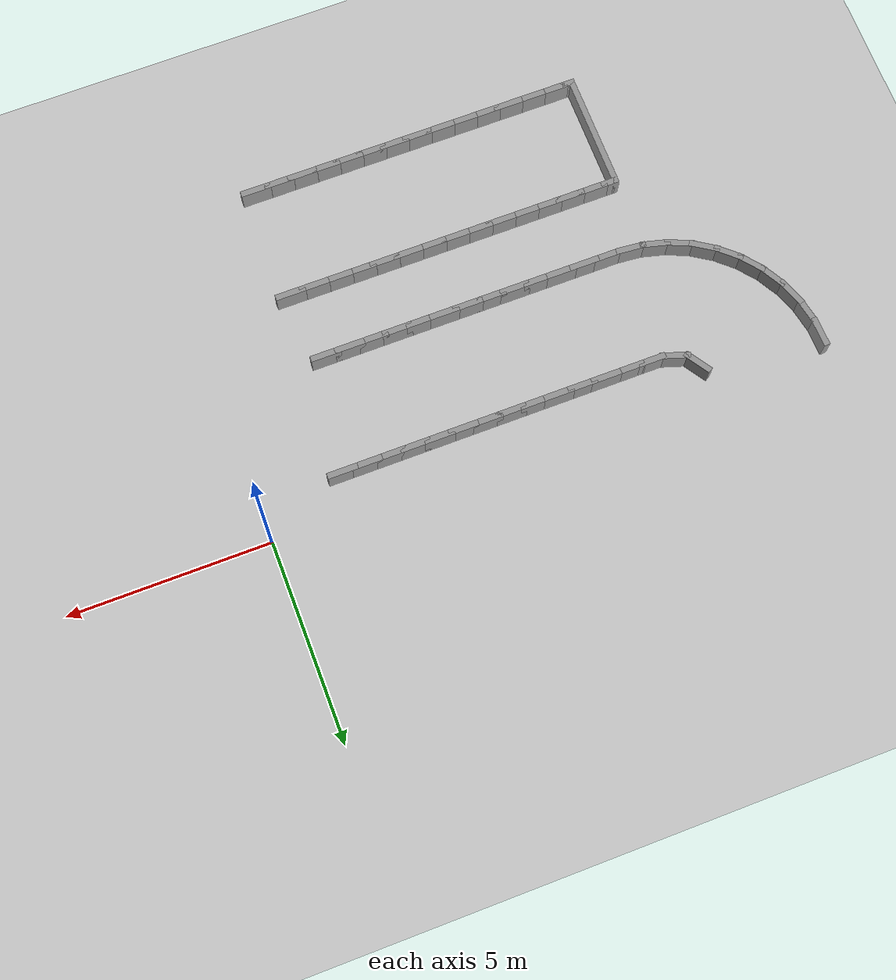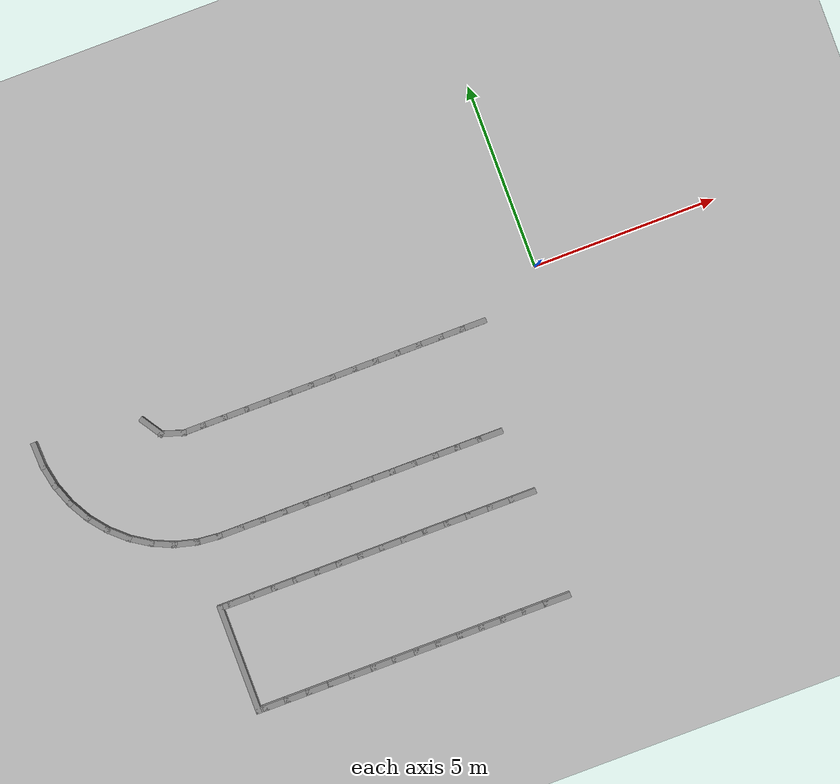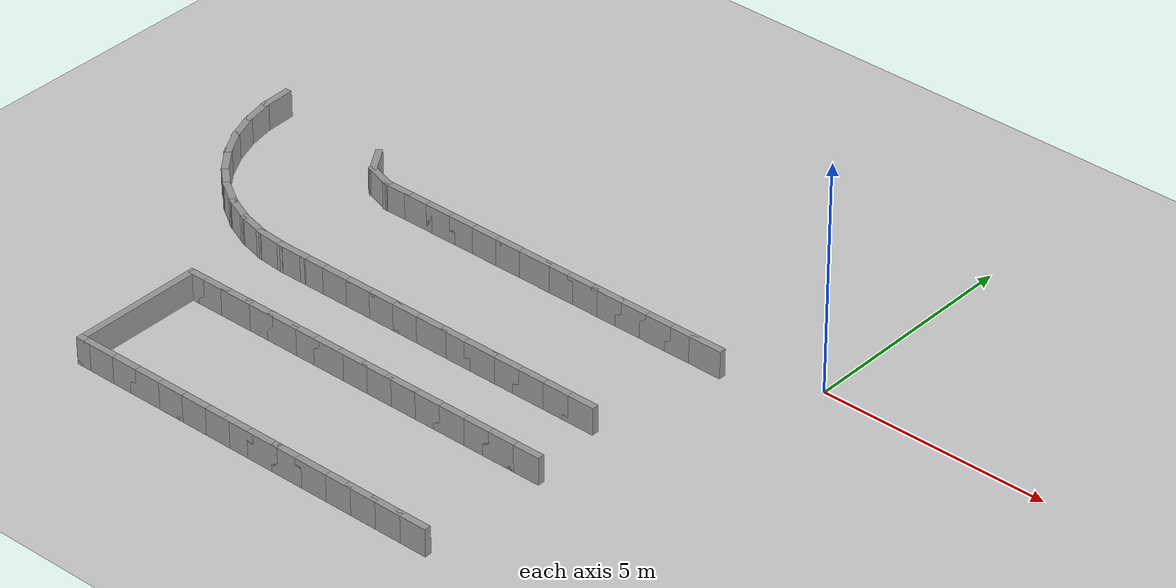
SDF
<sdf version="1.7">
 <world name="default">
  <model name="ground_plane">
   <static>1</static>
   <link name="link">
    <collision name="collision">
     <geometry><plane><normal>0 0 1</normal><size>100 100</size></plane></geometry>
     <surface><friction><ode><mu>100</mu><mu2>50</mu2></ode></friction></surface>
    </collision>
    <visual name="visual">
     <cast_shadows>0</cast_shadows>
     <geometry><plane><normal>0 0 1</normal><size>100 100</size></plane></geometry>
     <material>
      <script><uri>file://media/materials/scripts/gazebo.material</uri><name>Gazebo/Grey</name></script>
     </material>
    </visual>
   </link>
  </model>
  <model name="rand_serp_00">
   <link name="Wall_91">
    <collision name="Wall_91_Collision">
     <geometry><box><size>0.7384 0.1500 0.6000</size></box></geometry>
     <pose>0 0 0.3000 0 -0 0</pose>
    </collision>
    <visual name="Wall_91_Visual">
     <pose>0 0 0.3000 0 -0 0</pose>
     <geometry><box><size>0.7384 0.1500 0.6000</size></box></geometry>
     <material>
      <script><uri>file://media/materials/scripts/gazebo.material</uri><name>Gazebo/Grey</name></script>
      <ambient>1 1 1 1</ambient>
     </material>
    </visual>
    <pose>-10.8392 -0.4553 0 0 -0 -0.99139</pose>
   </link>
   <link name="Wall_92">
    <collision name="Wall_92_Collision">
     <geometry><box><size>0.7387 0.1500 0.6000</size></box></geometry>
     <pose>0 0 0.3000 0 -0 0</pose>
    </collision>
    <visual name="Wall_92_Visual">
     <pose>0 0 0.3000 0 -0 0</pose>
     <geometry><box><size>0.7387 0.1500 0.6000</size></box></geometry>
     <material>
      <script><uri>file://media/materials/scripts/gazebo.material</uri><name>Gazebo/Grey</name></script>
      <ambient>1 1 1 1</ambient>
     </material>
    </visual>
    <pose>-10.3981 -0.7920 0 0 -0 -0.31253</pose>
   </link>
   <link name="Wall_93">
    <collision name="Wall_93_Collision">
     <geometry><box><size>0.6933 0.1500 0.6000</size></box></geometry>
     <pose>0 0 0.3000 0 -0 0</pose>
    </collision>
    <visual name="Wall_93_Visual">
     <pose>0 0 0.3000 0 -0 0</pose>
     <geometry><box><size>0.6933 0.1500 0.6000</size></box></geometry>
     <material>
      <script><uri>file://media/materials/scripts/gazebo.material</uri><name>Gazebo/Grey</name></script>
      <ambient>1 1 1 1</ambient>
     </material>
    </visual>
    <pose>-9.8463 -0.8824 0 0 -0 0.00043</pose>
   </link>
   <link name="Wall_94">
    <collision name="Wall_94_Collision">
     <geometry><box><size>0.7500 0.1500 0.6000</size></box></geometry>
     <pose>0 0 0.3000 0 -0 0</pose>
    </collision>
    <visual name="Wall_94_Visual">
     <pose>0 0 0.3000 0 -0 0</pose>
     <geometry><box><size>0.7500 0.1500 0.6000</size></box></geometry>
     <material>
      <script><uri>file://media/materials/scripts/gazebo.material</uri><name>Gazebo/Grey</name></script>
      <ambient>1 1 1 1</ambient>
     </material>
    </visual>
    <pose>-9.2747 -0.8823 0 0 -0 0.00000</pose>
   </link>
   <link name="Wall_95">
    <collision name="Wall_95_Collision">
     <geometry><box><size>0.7500 0.1500 0.6000</size></box></geometry>
     <pose>0 0 0.3000 0 -0 0</pose>
    </collision>
    <visual name="Wall_95_Visual">
     <pose>0 0 0.3000 0 -0 0</pose>
     <geometry><box><size>0.7500 0.1500 0.6000</size></box></geometry>
     <material>
      <script><uri>file://media/materials/scripts/gazebo.material</uri><name>Gazebo/Grey</name></script>
      <ambient>1 1 1 1</ambient>
     </material>
    </visual>
    <pose>-8.6747 -0.8823 0 0 -0 0.00000</pose>
   </link>
   <link name="Wall_96">
    <collision name="Wall_96_Collision">
     <geometry><box><size>0.7500 0.1500 0.6000</size></box></geometry>
     <pose>0 0 0.3000 0 -0 0</pose>
    </collision>
    <visual name="Wall_96_Visual">
     <pose>0 0 0.3000 0 -0 0</pose>
     <geometry><box><size>0.7500 0.1500 0.6000</size></box></geometry>
     <material>
      <script><uri>file://media/materials/scripts/gazebo.material</uri><name>Gazebo/Grey</name></script>
      <ambient>1 1 1 1</ambient>
     </material>
    </visual>
    <pose>-8.0747 -0.8823 0 0 -0 0.00000</pose>
   </link>
   <link name="Wall_97">
    <collision name="Wall_97_Collision">
     <geometry><box><size>0.7500 0.1500 0.6000</size></box></geometry>
     <pose>0 0 0.3000 0 -0 0</pose>
    </collision>
    <visual name="Wall_97_Visual">
     <pose>0 0 0.3000 0 -0 0</pose>
     <geometry><box><size>0.7500 0.1500 0.6000</size></box></geometry>
     <material>
      <script><uri>file://media/materials/scripts/gazebo.material</uri><name>Gazebo/Grey</name></script>
      <ambient>1 1 1 1</ambient>
     </material>
    </visual>
    <pose>-7.4747 -0.8823 0 0 -0 0.00000</pose>
   </link>
   <link name="Wall_98">
    <collision name="Wall_98_Collision">
     <geometry><box><size>0.7500 0.1500 0.6000</size></box></geometry>
     <pose>0 0 0.3000 0 -0 0</pose>
    </collision>
    <visual name="Wall_98_Visual">
     <pose>0 0 0.3000 0 -0 0</pose>
     <geometry><box><size>0.7500 0.1500 0.6000</size></box></geometry>
     <material>
      <script><uri>file://media/materials/scripts/gazebo.material</uri><name>Gazebo/Grey</name></script>
      <ambient>1 1 1 1</ambient>
     </material>
    </visual>
    <pose>-6.8747 -0.8823 0 0 -0 0.00000</pose>
   </link>
   <link name="Wall_99">
    <collision name="Wall_99_Collision">
     <geometry><box><size>0.7500 0.1500 0.6000</size></box></geometry>
     <pose>0 0 0.3000 0 -0 0</pose>
    </collision>
    <visual name="Wall_99_Visual">
     <pose>0 0 0.3000 0 -0 0</pose>
     <geometry><box><size>0.7500 0.1500 0.6000</size></box></geometry>
     <material>
      <script><uri>file://media/materials/scripts/gazebo.material</uri><name>Gazebo/Grey</name></script>
      <ambient>1 1 1 1</ambient>
     </material>
    </visual>
    <pose>-6.2747 -0.8823 0 0 -0 0.00000</pose>
   </link>
   <link name="Wall_100">
    <collision name="Wall_100_Collision">
     <geometry><box><size>0.7500 0.1500 0.6000</size></box></geometry>
     <pose>0 0 0.3000 0 -0 0</pose>
    </collision>
    <visual name="Wall_100_Visual">
     <pose>0 0 0.3000 0 -0 0</pose>
     <geometry><box><size>0.7500 0.1500 0.6000</size></box></geometry>
     <material>
      <script><uri>file://media/materials/scripts/gazebo.material</uri><name>Gazebo/Grey</name></script>
      <ambient>1 1 1 1</ambient>
     </material>
    </visual>
    <pose>-5.6747 -0.8823 0 0 -0 0.00000</pose>
   </link>
   <link name="Wall_101">
    <collision name="Wall_101_Collision">
     <geometry><box><size>0.7500 0.1500 0.6000</size></box></geometry>
     <pose>0 0 0.3000 0 -0 0</pose>
    </collision>
    <visual name="Wall_101_Visual">
     <pose>0 0 0.3000 0 -0 0</pose>
     <geometry><box><size>0.7500 0.1500 0.6000</size></box></geometry>
     <material>
      <script><uri>file://media/materials/scripts/gazebo.material</uri><name>Gazebo/Grey</name></script>
      <ambient>1 1 1 1</ambient>
     </material>
    </visual>
    <pose>-5.0747 -0.8823 0 0 -0 0.00000</pose>
   </link>
   <link name="Wall_102">
    <collision name="Wall_102_Collision">
     <geometry><box><size>0.7500 0.1500 0.6000</size></box></geometry>
     <pose>0 0 0.3000 0 -0 0</pose>
    </collision>
    <visual name="Wall_102_Visual">
     <pose>0 0 0.3000 0 -0 0</pose>
     <geometry><box><size>0.7500 0.1500 0.6000</size></box></geometry>
     <material>
      <script><uri>file://media/materials/scripts/gazebo.material</uri><name>Gazebo/Grey</name></script>
      <ambient>1 1 1 1</ambient>
     </material>
    </visual>
    <pose>-4.4747 -0.8823 0 0 -0 0.00000</pose>
   </link>
   <link name="Wall_103">
    <collision name="Wall_103_Collision">
     <geometry><box><size>0.7500 0.1500 0.6000</size></box></geometry>
     <pose>0 0 0.3000 0 -0 0</pose>
    </collision>
    <visual name="Wall_103_Visual">
     <pose>0 0 0.3000 0 -0 0</pose>
     <geometry><box><size>0.7500 0.1500 0.6000</size></box></geometry>
     <material>
      <script><uri>file://media/materials/scripts/gazebo.material</uri><name>Gazebo/Grey</name></script>
      <ambient>1 1 1 1</ambient>
     </material>
    </visual>
    <pose>-3.8747 -0.8823 0 0 -0 0.00000</pose>
   </link>
   <link name="Wall_104">
    <collision name="Wall_104_Collision">
     <geometry><box><size>0.7500 0.1500 0.6000</size></box></geometry>
     <pose>0 0 0.3000 0 -0 0</pose>
    </collision>
    <visual name="Wall_104_Visual">
     <pose>0 0 0.3000 0 -0 0</pose>
     <geometry><box><size>0.7500 0.1500 0.6000</size></box></geometry>
     <material>
      <script><uri>file://media/materials/scripts/gazebo.material</uri><name>Gazebo/Grey</name></script>
      <ambient>1 1 1 1</ambient>
     </material>
    </visual>
    <pose>-3.2747 -0.8823 0 0 -0 0.00000</pose>
   </link>
   <link name="Wall_105">
    <collision name="Wall_105_Collision">
     <geometry><box><size>0.7500 0.1500 0.6000</size></box></geometry>
     <pose>0 0 0.3000 0 -0 0</pose>
    </collision>
    <visual name="Wall_105_Visual">
     <pose>0 0 0.3000 0 -0 0</pose>
     <geometry><box><size>0.7500 0.1500 0.6000</size></box></geometry>
     <material>
      <script><uri>file://media/materials/scripts/gazebo.material</uri><name>Gazebo/Grey</name></script>
      <ambient>1 1 1 1</ambient>
     </material>
    </visual>
    <pose>-2.6747 -0.8823 0 0 -0 0.00000</pose>
   </link>
   <link name="Wall_106">
    <collision name="Wall_106_Collision">
     <geometry><box><size>0.7500 0.1500 0.6000</size></box></geometry>
     <pose>0 0 0.3000 0 -0 0</pose>
    </collision>
    <visual name="Wall_106_Visual">
     <pose>0 0 0.3000 0 -0 0</pose>
     <geometry><box><size>0.7500 0.1500 0.6000</size></box></geometry>
     <material>
      <script><uri>file://media/materials/scripts/gazebo.material</uri><name>Gazebo/Grey</name></script>
      <ambient>1 1 1 1</ambient>
     </material>
    </visual>
    <pose>-2.0747 -0.8823 0 0 -0 0.00000</pose>
   </link>
   <link name="Wall_167">
    <collision name="Wall_167_Collision">
     <geometry><box><size>0.7500 0.1500 0.6000</size></box></geometry>
     <pose>0 0 0.3000 0 -0 0</pose>
    </collision>
    <visual name="Wall_167_Visual">
     <pose>0 0 0.3000 0 -0 0</pose>
     <geometry><box><size>0.7500 0.1500 0.6000</size></box></geometry>
     <material>
      <script><uri>file://media/materials/scripts/gazebo.material</uri><name>Gazebo/Grey</name></script>
      <ambient>1 1 1 1</ambient>
     </material>
    </visual>
    <pose>-2.5090 -8.3501 0 0 -0 3.14159</pose>
   </link>
   <link name="Wall_168">
    <collision name="Wall_168_Collision">
     <geometry><box><size>0.7500 0.1500 0.6000</size></box></geometry>
     <pose>0 0 0.3000 0 -0 0</pose>
    </collision>
    <visual name="Wall_168_Visual">
     <pose>0 0 0.3000 0 -0 0</pose>
     <geometry><box><size>0.7500 0.1500 0.6000</size></box></geometry>
     <material>
      <script><uri>file://media/materials/scripts/gazebo.material</uri><name>Gazebo/Grey</name></script>
      <ambient>1 1 1 1</ambient>
     </material>
    </visual>
    <pose>-3.1090 -8.3501 0 0 -0 3.14159</pose>
   </link>
   <link name="Wall_169">
    <collision name="Wall_169_Collision">
     <geometry><box><size>0.7500 0.1500 0.6000</size></box></geometry>
     <pose>0 0 0.3000 0 -0 0</pose>
    </collision>
    <visual name="Wall_169_Visual">
     <pose>0 0 0.3000 0 -0 0</pose>
     <geometry><box><size>0.7500 0.1500 0.6000</size></box></geometry>
     <material>
      <script><uri>file://media/materials/scripts/gazebo.material</uri><name>Gazebo/Grey</name></script>
      <ambient>1 1 1 1</ambient>
     </material>
    </visual>
    <pose>-3.7090 -8.3501 0 0 -0 3.14159</pose>
   </link>
   <link name="Wall_170">
    <collision name="Wall_170_Collision">
     <geometry><box><size>0.7500 0.1500 0.6000</size></box></geometry>
     <pose>0 0 0.3000 0 -0 0</pose>
    </collision>
    <visual name="Wall_170_Visual">
     <pose>0 0 0.3000 0 -0 0</pose>
     <geometry><box><size>0.7500 0.1500 0.6000</size></box></geometry>
     <material>
      <script><uri>file://media/materials/scripts/gazebo.material</uri><name>Gazebo/Grey</name></script>
      <ambient>1 1 1 1</ambient>
     </material>
    </visual>
    <pose>-4.3090 -8.3501 0 0 -0 3.14159</pose>
   </link>
   <link name="Wall_171">
    <collision name="Wall_171_Collision">
     <geometry><box><size>0.7500 0.1500 0.6000</size></box></geometry>
     <pose>0 0 0.3000 0 -0 0</pose>
    </collision>
    <visual name="Wall_171_Visual">
     <pose>0 0 0.3000 0 -0 0</pose>
     <geometry><box><size>0.7500 0.1500 0.6000</size></box></geometry>
     <material>
      <script><uri>file://media/materials/scripts/gazebo.material</uri><name>Gazebo/Grey</name></script>
      <ambient>1 1 1 1</ambient>
     </material>
    </visual>
    <pose>-4.9090 -8.3501 0 0 -0 3.14159</pose>
   </link>
   <link name="Wall_172">
    <collision name="Wall_172_Collision">
     <geometry><box><size>0.7500 0.1500 0.6000</size></box></geometry>
     <pose>0 0 0.3000 0 -0 0</pose>
    </collision>
    <visual name="Wall_172_Visual">
     <pose>0 0 0.3000 0 -0 0</pose>
     <geometry><box><size>0.7500 0.1500 0.6000</size></box></geometry>
     <material>
      <script><uri>file://media/materials/scripts/gazebo.material</uri><name>Gazebo/Grey</name></script>
      <ambient>1 1 1 1</ambient>
     </material>
    </visual>
    <pose>-5.5090 -8.3501 0 0 -0 3.14159</pose>
   </link>
   <link name="Wall_173">
    <collision name="Wall_173_Collision">
     <geometry><box><size>0.7500 0.1500 0.6000</size></box></geometry>
     <pose>0 0 0.3000 0 -0 0</pose>
    </collision>
    <visual name="Wall_173_Visual">
     <pose>0 0 0.3000 0 -0 0</pose>
     <geometry><box><size>0.7500 0.1500 0.6000</size></box></geometry>
     <material>
      <script><uri>file://media/materials/scripts/gazebo.material</uri><name>Gazebo/Grey</name></script>
      <ambient>1 1 1 1</ambient>
     </material>
    </visual>
    <pose>-6.1090 -8.3501 0 0 -0 3.14159</pose>
   </link>
   <link name="Wall_174">
    <collision name="Wall_174_Collision">
     <geometry><box><size>0.7500 0.1500 0.6000</size></box></geometry>
     <pose>0 0 0.3000 0 -0 0</pose>
    </collision>
    <visual name="Wall_174_Visual">
     <pose>0 0 0.3000 0 -0 0</pose>
     <geometry><box><size>0.7500 0.1500 0.6000</size></box></geometry>
     <material>
      <script><uri>file://media/materials/scripts/gazebo.material</uri><name>Gazebo/Grey</name></script>
      <ambient>1 1 1 1</ambient>
     </material>
    </visual>
    <pose>-6.7090 -8.3501 0 0 -0 3.14159</pose>
   </link>
   <link name="Wall_175">
    <collision name="Wall_175_Collision">
     <geometry><box><size>0.7500 0.1500 0.6000</size></box></geometry>
     <pose>0 0 0.3000 0 -0 0</pose>
    </collision>
    <visual name="Wall_175_Visual">
     <pose>0 0 0.3000 0 -0 0</pose>
     <geometry><box><size>0.7500 0.1500 0.6000</size></box></geometry>
     <material>
      <script><uri>file://media/materials/scripts/gazebo.material</uri><name>Gazebo/Grey</name></script>
      <ambient>1 1 1 1</ambient>
     </material>
    </visual>
    <pose>-7.3090 -8.3501 0 0 -0 3.14159</pose>
   </link>
   <link name="Wall_176">
    <collision name="Wall_176_Collision">
     <geometry><box><size>0.7500 0.1500 0.6000</size></box></geometry>
     <pose>0 0 0.3000 0 -0 0</pose>
    </collision>
    <visual name="Wall_176_Visual">
     <pose>0 0 0.3000 0 -0 0</pose>
     <geometry><box><size>0.7500 0.1500 0.6000</size></box></geometry>
     <material>
      <script><uri>file://media/materials/scripts/gazebo.material</uri><name>Gazebo/Grey</name></script>
      <ambient>1 1 1 1</ambient>
     </material>
    </visual>
    <pose>-7.9090 -8.3501 0 0 -0 3.14159</pose>
   </link>
   <link name="Wall_177">
    <collision name="Wall_177_Collision">
     <geometry><box><size>0.7500 0.1500 0.6000</size></box></geometry>
     <pose>0 0 0.3000 0 -0 0</pose>
    </collision>
    <visual name="Wall_177_Visual">
     <pose>0 0 0.3000 0 -0 0</pose>
     <geometry><box><size>0.7500 0.1500 0.6000</size></box></geometry>
     <material>
      <script><uri>file://media/materials/scripts/gazebo.material</uri><name>Gazebo/Grey</name></script>
      <ambient>1 1 1 1</ambient>
     </material>
    </visual>
    <pose>-8.5090 -8.3501 0 0 -0 3.14159</pose>
   </link>
   <link name="Wall_178">
    <collision name="Wall_178_Collision">
     <geometry><box><size>0.7500 0.1500 0.6000</size></box></geometry>
     <pose>0 0 0.3000 0 -0 0</pose>
    </collision>
    <visual name="Wall_178_Visual">
     <pose>0 0 0.3000 0 -0 0</pose>
     <geometry><box><size>0.7500 0.1500 0.6000</size></box></geometry>
     <material>
      <script><uri>file://media/materials/scripts/gazebo.material</uri><name>Gazebo/Grey</name></script>
      <ambient>1 1 1 1</ambient>
     </material>
    </visual>
    <pose>-9.1090 -8.3501 0 0 -0 3.14159</pose>
   </link>
   <link name="Wall_179">
    <collision name="Wall_179_Collision">
     <geometry><box><size>0.7500 0.1500 0.6000</size></box></geometry>
     <pose>0 0 0.3000 0 -0 0</pose>
    </collision>
    <visual name="Wall_179_Visual">
     <pose>0 0 0.3000 0 -0 0</pose>
     <geometry><box><size>0.7500 0.1500 0.6000</size></box></geometry>
     <material>
      <script><uri>file://media/materials/scripts/gazebo.material</uri><name>Gazebo/Grey</name></script>
      <ambient>1 1 1 1</ambient>
     </material>
    </visual>
    <pose>-9.7090 -8.3501 0 0 -0 3.14159</pose>
   </link>
   <link name="Wall_180">
    <collision name="Wall_180_Collision">
     <geometry><box><size>0.7500 0.1500 0.6000</size></box></geometry>
     <pose>0 0 0.3000 0 -0 0</pose>
    </collision>
    <visual name="Wall_180_Visual">
     <pose>0 0 0.3000 0 -0 0</pose>
     <geometry><box><size>0.7500 0.1500 0.6000</size></box></geometry>
     <material>
      <script><uri>file://media/materials/scripts/gazebo.material</uri><name>Gazebo/Grey</name></script>
      <ambient>1 1 1 1</ambient>
     </material>
    </visual>
    <pose>-10.3090 -8.3501 0 0 -0 3.14159</pose>
   </link>
   <link name="Wall_181">
    <collision name="Wall_181_Collision">
     <geometry><box><size>0.3476 0.1500 0.6000</size></box></geometry>
     <pose>0 0 0.3000 0 -0 0</pose>
    </collision>
    <visual name="Wall_181_Visual">
     <pose>0 0 0.3000 0 -0 0</pose>
     <geometry><box><size>0.3476 0.1500 0.6000</size></box></geometry>
     <material>
      <script><uri>file://media/materials/scripts/gazebo.material</uri><name>Gazebo/Grey</name></script>
      <ambient>1 1 1 1</ambient>
     </material>
    </visual>
    <pose>-10.7078 -8.3501 0 0 -0 3.14159</pose>
   </link>
   <link name="Wall_265">
    <collision name="Wall_265_Collision">
     <geometry><box><size>0.7493 0.1500 0.6000</size></box></geometry>
     <pose>0 0 0.3000 0 -0 0</pose>
    </collision>
    <visual name="Wall_265_Visual">
     <pose>0 0 0.3000 0 -0 0</pose>
     <geometry><box><size>0.7493 0.1500 0.6000</size></box></geometry>
     <material>
      <script><uri>file://media/materials/scripts/gazebo.material</uri><name>Gazebo/Grey</name></script>
      <ambient>1 1 1 1</ambient>
     </material>
    </visual>
    <pose>-13.8621 -0.1330 0 0 -0 -1.53501</pose>
   </link>
   <link name="Wall_266">
    <collision name="Wall_266_Collision">
     <geometry><box><size>0.7493 0.1500 0.6000</size></box></geometry>
     <pose>0 0 0.3000 0 -0 0</pose>
    </collision>
    <visual name="Wall_266_Visual">
     <pose>0 0 0.3000 0 -0 0</pose>
     <geometry><box><size>0.7493 0.1500 0.6000</size></box></geometry>
     <material>
      <script><uri>file://media/materials/scripts/gazebo.material</uri><name>Gazebo/Grey</name></script>
      <ambient>1 1 1 1</ambient>
     </material>
    </visual>
    <pose>-13.7929 -0.7263 0 0 -0 -1.37432</pose>
   </link>
   <link name="Wall_267">
    <collision name="Wall_267_Collision">
     <geometry><box><size>0.7493 0.1500 0.6000</size></box></geometry>
     <pose>0 0 0.3000 0 -0 0</pose>
    </collision>
    <visual name="Wall_267_Visual">
     <pose>0 0 0.3000 0 -0 0</pose>
     <geometry><box><size>0.7493 0.1500 0.6000</size></box></geometry>
     <material>
      <script><uri>file://media/materials/scripts/gazebo.material</uri><name>Gazebo/Grey</name></script>
      <ambient>1 1 1 1</ambient>
     </material>
    </visual>
    <pose>-13.6296 -1.3009 0 0 -0 -1.21364</pose>
   </link>
   <link name="Wall_268">
    <collision name="Wall_268_Collision">
     <geometry><box><size>0.7493 0.1500 0.6000</size></box></geometry>
     <pose>0 0 0.3000 0 -0 0</pose>
    </collision>
    <visual name="Wall_268_Visual">
     <pose>0 0 0.3000 0 -0 0</pose>
     <geometry><box><size>0.7493 0.1500 0.6000</size></box></geometry>
     <material>
      <script><uri>file://media/materials/scripts/gazebo.material</uri><name>Gazebo/Grey</name></script>
      <ambient>1 1 1 1</ambient>
     </material>
    </visual>
    <pose>-13.3766 -1.8420 0 0 -0 -1.05295</pose>
   </link>
   <link name="Wall_269">
    <collision name="Wall_269_Collision">
     <geometry><box><size>0.7493 0.1500 0.6000</size></box></geometry>
     <pose>0 0 0.3000 0 -0 0</pose>
    </collision>
    <visual name="Wall_269_Visual">
     <pose>0 0 0.3000 0 -0 0</pose>
     <geometry><box><size>0.7493 0.1500 0.6000</size></box></geometry>
     <material>
      <script><uri>file://media/materials/scripts/gazebo.material</uri><name>Gazebo/Grey</name></script>
      <ambient>1 1 1 1</ambient>
     </material>
    </visual>
    <pose>-13.0402 -2.3356 0 0 -0 -0.89227</pose>
   </link>
   <link name="Wall_270">
    <collision name="Wall_270_Collision">
     <geometry><box><size>0.7493 0.1500 0.6000</size></box></geometry>
     <pose>0 0 0.3000 0 -0 0</pose>
    </collision>
    <visual name="Wall_270_Visual">
     <pose>0 0 0.3000 0 -0 0</pose>
     <geometry><box><size>0.7493 0.1500 0.6000</size></box></geometry>
     <material>
      <script><uri>file://media/materials/scripts/gazebo.material</uri><name>Gazebo/Grey</name></script>
      <ambient>1 1 1 1</ambient>
     </material>
    </visual>
    <pose>-12.6291 -2.7691 0 0 -0 -0.73159</pose>
   </link>
   <link name="Wall_271">
    <collision name="Wall_271_Collision">
     <geometry><box><size>0.7493 0.1500 0.6000</size></box></geometry>
     <pose>0 0 0.3000 0 -0 0</pose>
    </collision>
    <visual name="Wall_271_Visual">
     <pose>0 0 0.3000 0 -0 0</pose>
     <geometry><box><size>0.7493 0.1500 0.6000</size></box></geometry>
     <material>
      <script><uri>file://media/materials/scripts/gazebo.material</uri><name>Gazebo/Grey</name></script>
      <ambient>1 1 1 1</ambient>
     </material>
    </visual>
    <pose>-12.1541 -3.1312 0 0 -0 -0.57090</pose>
   </link>
   <link name="Wall_272">
    <collision name="Wall_272_Collision">
     <geometry><box><size>0.7493 0.1500 0.6000</size></box></geometry>
     <pose>0 0 0.3000 0 -0 0</pose>
    </collision>
    <visual name="Wall_272_Visual">
     <pose>0 0 0.3000 0 -0 0</pose>
     <geometry><box><size>0.7493 0.1500 0.6000</size></box></geometry>
     <material>
      <script><uri>file://media/materials/scripts/gazebo.material</uri><name>Gazebo/Grey</name></script>
      <ambient>1 1 1 1</ambient>
     </material>
    </visual>
    <pose>-11.6271 -3.4126 0 0 -0 -0.41022</pose>
   </link>
   <link name="Wall_273">
    <collision name="Wall_273_Collision">
     <geometry><box><size>0.7493 0.1500 0.6000</size></box></geometry>
     <pose>0 0 0.3000 0 -0 0</pose>
    </collision>
    <visual name="Wall_273_Visual">
     <pose>0 0 0.3000 0 -0 0</pose>
     <geometry><box><size>0.7493 0.1500 0.6000</size></box></geometry>
     <material>
      <script><uri>file://media/materials/scripts/gazebo.material</uri><name>Gazebo/Grey</name></script>
      <ambient>1 1 1 1</ambient>
     </material>
    </visual>
    <pose>-11.0620 -3.6061 0 0 -0 -0.24953</pose>
   </link>
   <link name="Wall_274">
    <collision name="Wall_274_Collision">
     <geometry><box><size>0.7493 0.1500 0.6000</size></box></geometry>
     <pose>0 0 0.3000 0 -0 0</pose>
    </collision>
    <visual name="Wall_274_Visual">
     <pose>0 0 0.3000 0 -0 0</pose>
     <geometry><box><size>0.7493 0.1500 0.6000</size></box></geometry>
     <material>
      <script><uri>file://media/materials/scripts/gazebo.material</uri><name>Gazebo/Grey</name></script>
      <ambient>1 1 1 1</ambient>
     </material>
    </visual>
    <pose>-10.4731 -3.7068 0 0 -0 -0.08931</pose>
   </link>
   <link name="Wall_275">
    <collision name="Wall_275_Collision">
     <geometry><box><size>0.7500 0.1500 0.6000</size></box></geometry>
     <pose>0 0 0.3000 0 -0 0</pose>
    </collision>
    <visual name="Wall_275_Visual">
     <pose>0 0 0.3000 0 -0 0</pose>
     <geometry><box><size>0.7500 0.1500 0.6000</size></box></geometry>
     <material>
      <script><uri>file://media/materials/scripts/gazebo.material</uri><name>Gazebo/Grey</name></script>
      <ambient>1 1 1 1</ambient>
     </material>
    </visual>
    <pose>-9.8747 -3.7337 0 0 -0 -0.00058</pose>
   </link>
   <link name="Wall_276">
    <collision name="Wall_276_Collision">
     <geometry><box><size>0.7500 0.1500 0.6000</size></box></geometry>
     <pose>0 0 0.3000 0 -0 0</pose>
    </collision>
    <visual name="Wall_276_Visual">
     <pose>0 0 0.3000 0 -0 0</pose>
     <geometry><box><size>0.7500 0.1500 0.6000</size></box></geometry>
     <material>
      <script><uri>file://media/materials/scripts/gazebo.material</uri><name>Gazebo/Grey</name></script>
      <ambient>1 1 1 1</ambient>
     </material>
    </visual>
    <pose>-9.2747 -3.7339 0 0 -0 0.00000</pose>
   </link>
   <link name="Wall_277">
    <collision name="Wall_277_Collision">
     <geometry><box><size>0.7500 0.1500 0.6000</size></box></geometry>
     <pose>0 0 0.3000 0 -0 0</pose>
    </collision>
    <visual name="Wall_277_Visual">
     <pose>0 0 0.3000 0 -0 0</pose>
     <geometry><box><size>0.7500 0.1500 0.6000</size></box></geometry>
     <material>
      <script><uri>file://media/materials/scripts/gazebo.material</uri><name>Gazebo/Grey</name></script>
      <ambient>1 1 1 1</ambient>
     </material>
    </visual>
    <pose>-8.6747 -3.7339 0 0 -0 0.00000</pose>
   </link>
   <link name="Wall_278">
    <collision name="Wall_278_Collision">
     <geometry><box><size>0.7500 0.1500 0.6000</size></box></geometry>
     <pose>0 0 0.3000 0 -0 0</pose>
    </collision>
    <visual name="Wall_278_Visual">
     <pose>0 0 0.3000 0 -0 0</pose>
     <geometry><box><size>0.7500 0.1500 0.6000</size></box></geometry>
     <material>
      <script><uri>file://media/materials/scripts/gazebo.material</uri><name>Gazebo/Grey</name></script>
      <ambient>1 1 1 1</ambient>
     </material>
    </visual>
    <pose>-8.0747 -3.7339 0 0 -0 0.00000</pose>
   </link>
   <link name="Wall_279">
    <collision name="Wall_279_Collision">
     <geometry><box><size>0.7500 0.1500 0.6000</size></box></geometry>
     <pose>0 0 0.3000 0 -0 0</pose>
    </collision>
    <visual name="Wall_279_Visual">
     <pose>0 0 0.3000 0 -0 0</pose>
     <geometry><box><size>0.7500 0.1500 0.6000</size></box></geometry>
     <material>
      <script><uri>file://media/materials/scripts/gazebo.material</uri><name>Gazebo/Grey</name></script>
      <ambient>1 1 1 1</ambient>
     </material>
    </visual>
    <pose>-7.4747 -3.7339 0 0 -0 0.00000</pose>
   </link>
   <link name="Wall_280">
    <collision name="Wall_280_Collision">
     <geometry><box><size>0.7500 0.1500 0.6000</size></box></geometry>
     <pose>0 0 0.3000 0 -0 0</pose>
    </collision>
    <visual name="Wall_280_Visual">
     <pose>0 0 0.3000 0 -0 0</pose>
     <geometry><box><size>0.7500 0.1500 0.6000</size></box></geometry>
     <material>
      <script><uri>file://media/materials/scripts/gazebo.material</uri><name>Gazebo/Grey</name></script>
      <ambient>1 1 1 1</ambient>
     </material>
    </visual>
    <pose>-6.8747 -3.7339 0 0 -0 0.00000</pose>
   </link>
   <link name="Wall_281">
    <collision name="Wall_281_Collision">
     <geometry><box><size>0.7500 0.1500 0.6000</size></box></geometry>
     <pose>0 0 0.3000 0 -0 0</pose>
    </collision>
    <visual name="Wall_281_Visual">
     <pose>0 0 0.3000 0 -0 0</pose>
     <geometry><box><size>0.7500 0.1500 0.6000</size></box></geometry>
     <material>
      <script><uri>file://media/materials/scripts/gazebo.material</uri><name>Gazebo/Grey</name></script>
      <ambient>1 1 1 1</ambient>
     </material>
    </visual>
    <pose>-6.2747 -3.7339 0 0 -0 0.00000</pose>
   </link>
   <link name="Wall_282">
    <collision name="Wall_282_Collision">
     <geometry><box><size>0.7500 0.1500 0.6000</size></box></geometry>
     <pose>0 0 0.3000 0 -0 0</pose>
    </collision>
    <visual name="Wall_282_Visual">
     <pose>0 0 0.3000 0 -0 0</pose>
     <geometry><box><size>0.7500 0.1500 0.6000</size></box></geometry>
     <material>
      <script><uri>file://media/materials/scripts/gazebo.material</uri><name>Gazebo/Grey</name></script>
      <ambient>1 1 1 1</ambient>
     </material>
    </visual>
    <pose>-5.6747 -3.7339 0 0 -0 0.00000</pose>
   </link>
   <link name="Wall_283">
    <collision name="Wall_283_Collision">
     <geometry><box><size>0.7500 0.1500 0.6000</size></box></geometry>
     <pose>0 0 0.3000 0 -0 0</pose>
    </collision>
    <visual name="Wall_283_Visual">
     <pose>0 0 0.3000 0 -0 0</pose>
     <geometry><box><size>0.7500 0.1500 0.6000</size></box></geometry>
     <material>
      <script><uri>file://media/materials/scripts/gazebo.material</uri><name>Gazebo/Grey</name></script>
      <ambient>1 1 1 1</ambient>
     </material>
    </visual>
    <pose>-5.0747 -3.7339 0 0 -0 0.00000</pose>
   </link>
   <link name="Wall_284">
    <collision name="Wall_284_Collision">
     <geometry><box><size>0.7500 0.1500 0.6000</size></box></geometry>
     <pose>0 0 0.3000 0 -0 0</pose>
    </collision>
    <visual name="Wall_284_Visual">
     <pose>0 0 0.3000 0 -0 0</pose>
     <geometry><box><size>0.7500 0.1500 0.6000</size></box></geometry>
     <material>
      <script><uri>file://media/materials/scripts/gazebo.material</uri><name>Gazebo/Grey</name></script>
      <ambient>1 1 1 1</ambient>
     </material>
    </visual>
    <pose>-4.4747 -3.7339 0 0 -0 0.00000</pose>
   </link>
   <link name="Wall_285">
    <collision name="Wall_285_Collision">
     <geometry><box><size>0.7500 0.1500 0.6000</size></box></geometry>
     <pose>0 0 0.3000 0 -0 0</pose>
    </collision>
    <visual name="Wall_285_Visual">
     <pose>0 0 0.3000 0 -0 0</pose>
     <geometry><box><size>0.7500 0.1500 0.6000</size></box></geometry>
     <material>
      <script><uri>file://media/materials/scripts/gazebo.material</uri><name>Gazebo/Grey</name></script>
      <ambient>1 1 1 1</ambient>
     </material>
    </visual>
    <pose>-3.8747 -3.7339 0 0 -0 0.00000</pose>
   </link>
   <link name="Wall_286">
    <collision name="Wall_286_Collision">
     <geometry><box><size>0.7500 0.1500 0.6000</size></box></geometry>
     <pose>0 0 0.3000 0 -0 0</pose>
    </collision>
    <visual name="Wall_286_Visual">
     <pose>0 0 0.3000 0 -0 0</pose>
     <geometry><box><size>0.7500 0.1500 0.6000</size></box></geometry>
     <material>
      <script><uri>file://media/materials/scripts/gazebo.material</uri><name>Gazebo/Grey</name></script>
      <ambient>1 1 1 1</ambient>
     </material>
    </visual>
    <pose>-3.2747 -3.7339 0 0 -0 0.00000</pose>
   </link>
   <link name="Wall_287">
    <collision name="Wall_287_Collision">
     <geometry><box><size>0.7500 0.1500 0.6000</size></box></geometry>
     <pose>0 0 0.3000 0 -0 0</pose>
    </collision>
    <visual name="Wall_287_Visual">
     <pose>0 0 0.3000 0 -0 0</pose>
     <geometry><box><size>0.7500 0.1500 0.6000</size></box></geometry>
     <material>
      <script><uri>file://media/materials/scripts/gazebo.material</uri><name>Gazebo/Grey</name></script>
      <ambient>1 1 1 1</ambient>
     </material>
    </visual>
    <pose>-2.6747 -3.7339 0 0 -0 0.00000</pose>
   </link>
   <link name="Wall_334">
    <collision name="Wall_334_Collision">
     <geometry><box><size>0.7500 0.1500 0.6000</size></box></geometry>
     <pose>0 0 0.3000 0 -0 0</pose>
    </collision>
    <visual name="Wall_334_Visual">
     <pose>0 0 0.3000 0 -0 0</pose>
     <geometry><box><size>0.7500 0.1500 0.6000</size></box></geometry>
     <material>
      <script><uri>file://media/materials/scripts/gazebo.material</uri><name>Gazebo/Grey</name></script>
      <ambient>1 1 1 1</ambient>
     </material>
    </visual>
    <pose>-2.4103 -5.4985 0 0 -0 3.14159</pose>
   </link>
   <link name="Wall_335">
    <collision name="Wall_335_Collision">
     <geometry><box><size>0.7500 0.1500 0.6000</size></box></geometry>
     <pose>0 0 0.3000 0 -0 0</pose>
    </collision>
    <visual name="Wall_335_Visual">
     <pose>0 0 0.3000 0 -0 0</pose>
     <geometry><box><size>0.7500 0.1500 0.6000</size></box></geometry>
     <material>
      <script><uri>file://media/materials/scripts/gazebo.material</uri><name>Gazebo/Grey</name></script>
      <ambient>1 1 1 1</ambient>
     </material>
    </visual>
    <pose>-3.0103 -5.4985 0 0 -0 3.14159</pose>
   </link>
   <link name="Wall_336">
    <collision name="Wall_336_Collision">
     <geometry><box><size>0.7500 0.1500 0.6000</size></box></geometry>
     <pose>0 0 0.3000 0 -0 0</pose>
    </collision>
    <visual name="Wall_336_Visual">
     <pose>0 0 0.3000 0 -0 0</pose>
     <geometry><box><size>0.7500 0.1500 0.6000</size></box></geometry>
     <material>
      <script><uri>file://media/materials/scripts/gazebo.material</uri><name>Gazebo/Grey</name></script>
      <ambient>1 1 1 1</ambient>
     </material>
    </visual>
    <pose>-3.6103 -5.4985 0 0 -0 3.14159</pose>
   </link>
   <link name="Wall_337">
    <collision name="Wall_337_Collision">
     <geometry><box><size>0.7500 0.1500 0.6000</size></box></geometry>
     <pose>0 0 0.3000 0 -0 0</pose>
    </collision>
    <visual name="Wall_337_Visual">
     <pose>0 0 0.3000 0 -0 0</pose>
     <geometry><box><size>0.7500 0.1500 0.6000</size></box></geometry>
     <material>
      <script><uri>file://media/materials/scripts/gazebo.material</uri><name>Gazebo/Grey</name></script>
      <ambient>1 1 1 1</ambient>
     </material>
    </visual>
    <pose>-4.2103 -5.4985 0 0 -0 3.14159</pose>
   </link>
   <link name="Wall_338">
    <collision name="Wall_338_Collision">
     <geometry><box><size>0.7500 0.1500 0.6000</size></box></geometry>
     <pose>0 0 0.3000 0 -0 0</pose>
    </collision>
    <visual name="Wall_338_Visual">
     <pose>0 0 0.3000 0 -0 0</pose>
     <geometry><box><size>0.7500 0.1500 0.6000</size></box></geometry>
     <material>
      <script><uri>file://media/materials/scripts/gazebo.material</uri><name>Gazebo/Grey</name></script>
      <ambient>1 1 1 1</ambient>
     </material>
    </visual>
    <pose>-4.8103 -5.4985 0 0 -0 3.14159</pose>
   </link>
   <link name="Wall_339">
    <collision name="Wall_339_Collision">
     <geometry><box><size>0.7500 0.1500 0.6000</size></box></geometry>
     <pose>0 0 0.3000 0 -0 0</pose>
    </collision>
    <visual name="Wall_339_Visual">
     <pose>0 0 0.3000 0 -0 0</pose>
     <geometry><box><size>0.7500 0.1500 0.6000</size></box></geometry>
     <material>
      <script><uri>file://media/materials/scripts/gazebo.material</uri><name>Gazebo/Grey</name></script>
      <ambient>1 1 1 1</ambient>
     </material>
    </visual>
    <pose>-5.4103 -5.4985 0 0 -0 3.14159</pose>
   </link>
   <link name="Wall_340">
    <collision name="Wall_340_Collision">
     <geometry><box><size>0.7500 0.1500 0.6000</size></box></geometry>
     <pose>0 0 0.3000 0 -0 0</pose>
    </collision>
    <visual name="Wall_340_Visual">
     <pose>0 0 0.3000 0 -0 0</pose>
     <geometry><box><size>0.7500 0.1500 0.6000</size></box></geometry>
     <material>
      <script><uri>file://media/materials/scripts/gazebo.material</uri><name>Gazebo/Grey</name></script>
      <ambient>1 1 1 1</ambient>
     </material>
    </visual>
    <pose>-6.0103 -5.4985 0 0 -0 3.14159</pose>
   </link>
   <link name="Wall_341">
    <collision name="Wall_341_Collision">
     <geometry><box><size>0.7500 0.1500 0.6000</size></box></geometry>
     <pose>0 0 0.3000 0 -0 0</pose>
    </collision>
    <visual name="Wall_341_Visual">
     <pose>0 0 0.3000 0 -0 0</pose>
     <geometry><box><size>0.7500 0.1500 0.6000</size></box></geometry>
     <material>
      <script><uri>file://media/materials/scripts/gazebo.material</uri><name>Gazebo/Grey</name></script>
      <ambient>1 1 1 1</ambient>
     </material>
    </visual>
    <pose>-6.6103 -5.4985 0 0 -0 3.14159</pose>
   </link>
   <link name="Wall_342">
    <collision name="Wall_342_Collision">
     <geometry><box><size>0.7500 0.1500 0.6000</size></box></geometry>
     <pose>0 0 0.3000 0 -0 0</pose>
    </collision>
    <visual name="Wall_342_Visual">
     <pose>0 0 0.3000 0 -0 0</pose>
     <geometry><box><size>0.7500 0.1500 0.6000</size></box></geometry>
     <material>
      <script><uri>file://media/materials/scripts/gazebo.material</uri><name>Gazebo/Grey</name></script>
      <ambient>1 1 1 1</ambient>
     </material>
    </visual>
    <pose>-7.2103 -5.4985 0 0 -0 3.14159</pose>
   </link>
   <link name="Wall_343">
    <collision name="Wall_343_Collision">
     <geometry><box><size>0.7500 0.1500 0.6000</size></box></geometry>
     <pose>0 0 0.3000 0 -0 0</pose>
    </collision>
    <visual name="Wall_343_Visual">
     <pose>0 0 0.3000 0 -0 0</pose>
     <geometry><box><size>0.7500 0.1500 0.6000</size></box></geometry>
     <material>
      <script><uri>file://media/materials/scripts/gazebo.material</uri><name>Gazebo/Grey</name></script>
      <ambient>1 1 1 1</ambient>
     </material>
    </visual>
    <pose>-7.8103 -5.4985 0 0 -0 3.14159</pose>
   </link>
   <link name="Wall_344">
    <collision name="Wall_344_Collision">
     <geometry><box><size>0.7500 0.1500 0.6000</size></box></geometry>
     <pose>0 0 0.3000 0 -0 0</pose>
    </collision>
    <visual name="Wall_344_Visual">
     <pose>0 0 0.3000 0 -0 0</pose>
     <geometry><box><size>0.7500 0.1500 0.6000</size></box></geometry>
     <material>
      <script><uri>file://media/materials/scripts/gazebo.material</uri><name>Gazebo/Grey</name></script>
      <ambient>1 1 1 1</ambient>
     </material>
    </visual>
    <pose>-8.4103 -5.4985 0 0 -0 3.14159</pose>
   </link>
   <link name="Wall_345">
    <collision name="Wall_345_Collision">
     <geometry><box><size>0.7500 0.1500 0.6000</size></box></geometry>
     <pose>0 0 0.3000 0 -0 0</pose>
    </collision>
    <visual name="Wall_345_Visual">
     <pose>0 0 0.3000 0 -0 0</pose>
     <geometry><box><size>0.7500 0.1500 0.6000</size></box></geometry>
     <material>
      <script><uri>file://media/materials/scripts/gazebo.material</uri><name>Gazebo/Grey</name></script>
      <ambient>1 1 1 1</ambient>
     </material>
    </visual>
    <pose>-9.0103 -5.4985 0 0 -0 3.14159</pose>
   </link>
   <link name="Wall_346">
    <collision name="Wall_346_Collision">
     <geometry><box><size>0.7500 0.1500 0.6000</size></box></geometry>
     <pose>0 0 0.3000 0 -0 0</pose>
    </collision>
    <visual name="Wall_346_Visual">
     <pose>0 0 0.3000 0 -0 0</pose>
     <geometry><box><size>0.7500 0.1500 0.6000</size></box></geometry>
     <material>
      <script><uri>file://media/materials/scripts/gazebo.material</uri><name>Gazebo/Grey</name></script>
      <ambient>1 1 1 1</ambient>
     </material>
    </visual>
    <pose>-9.6103 -5.4985 0 0 -0 3.14159</pose>
   </link>
   <link name="Wall_347">
    <collision name="Wall_347_Collision">
     <geometry><box><size>0.7500 0.1500 0.6000</size></box></geometry>
     <pose>0 0 0.3000 0 -0 0</pose>
    </collision>
    <visual name="Wall_347_Visual">
     <pose>0 0 0.3000 0 -0 0</pose>
     <geometry><box><size>0.7500 0.1500 0.6000</size></box></geometry>
     <material>
      <script><uri>file://media/materials/scripts/gazebo.material</uri><name>Gazebo/Grey</name></script>
      <ambient>1 1 1 1</ambient>
     </material>
    </visual>
    <pose>-10.2103 -5.4985 0 0 -0 3.14159</pose>
   </link>
   <link name="Wall_348">
    <collision name="Wall_348_Collision">
     <geometry><box><size>0.4464 0.1500 0.6000</size></box></geometry>
     <pose>0 0 0.3000 0 -0 0</pose>
    </collision>
    <visual name="Wall_348_Visual">
     <pose>0 0 0.3000 0 -0 0</pose>
     <geometry><box><size>0.4464 0.1500 0.6000</size></box></geometry>
     <material>
      <script><uri>file://media/materials/scripts/gazebo.material</uri><name>Gazebo/Grey</name></script>
      <ambient>1 1 1 1</ambient>
     </material>
    </visual>
    <pose>-10.6585 -5.4985 0 0 -0 3.14159</pose>
   </link>
   <link name="Wall_350">
    <collision name="Wall_350_Collision">
     <geometry><box><size>3.0016 0.1500 0.6000</size></box></geometry>
     <pose>0 0 0.3000 0 -0 0</pose>
    </collision>
    <visual name="Wall_350_Visual">
     <pose>0 0 0.3000 0 -0 0</pose>
     <geometry><box><size>3.0016 0.1500 0.6000</size></box></geometry>
     <material>
      <script><uri>file://media/materials/scripts/gazebo.material</uri><name>Gazebo/Grey</name></script>
      <ambient>1 1 1 1</ambient>
     </material>
    </visual>
    <pose>-10.8067 -6.9243 0 0 -0 1.57080</pose>
   </link>
   <static>1</static>
  </model>
 </world>
</sdf>
